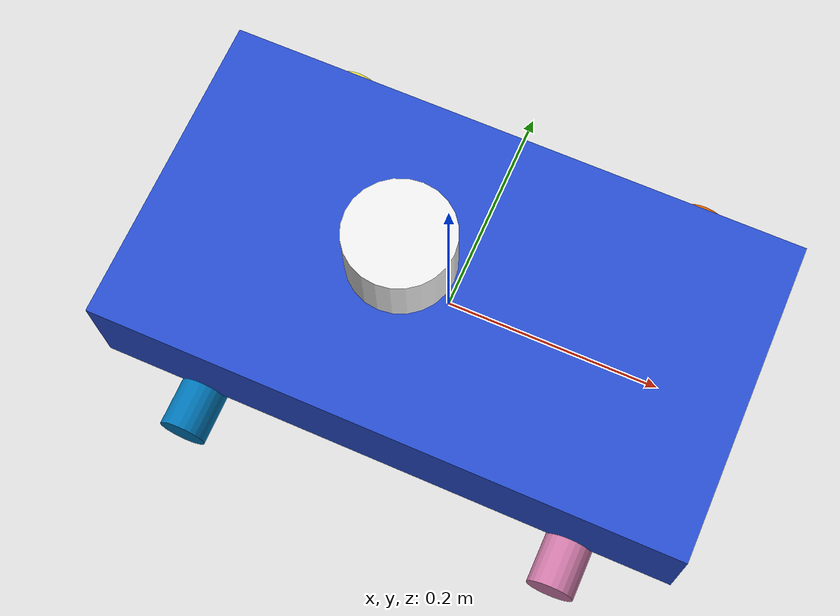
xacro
<?xml version="1.0" ?>
<robot name="myrobot" xmlns:xacro="http://www.ros.org/wiki/xacro">
    <xacro:include filename="$(find kiet_robot_description)/urdf/materials.xacro" />
    <xacro:include filename="$(find kiet_robot_description)/urdf/kiet_robot.gazebo" />
    <xacro:include filename="$(find kiet_robot_description)/urdf/macros.xacro" />

    <link name="base_footprint"/>

    <joint name="base_joint" type="fixed">
      <parent link="base_footprint"/>
      <child link="base_link"/>
      <origin xyz="0.0 0.0 0.010" rpy="0 0 0"/>
    </joint>

    <link name="base_link">
        <!-- pose and inertial -->
        <pose>0 0 0.1 0 0 0</pose>
        <inertial>
            <mass value="10"/>
            <origin rpy="0 0 0" xyz="0 0 0.1"/>
            <inertia ixx="0.0395416666667" ixy="0" ixz="0" iyy="0.106208333333" iyz="0" izz="0.106208333333"/>
        </inertial>
        <!-- body -->
        <collision name="collision_base_link">
            <geometry>
                <box size="0.55 0.3 0.11"/>
            </geometry>
        </collision>
        <visual>
            <origin rpy="0 0 0" xyz="0 0 0"/>
            <geometry>
                <box size="0.55 0.3 0.1"/>
            </geometry>
            <material name="blue"/>
        </visual>
    </link>

    <joint name="scan_joint" type="fixed">
        <origin xyz="-0.045 0 0.08" rpy="0 0 0"/>
        <parent link="base_link"/>
        <child link="base_scan"/>
    </joint>

    <link name="base_scan">
        <inertial>
            <origin xyz="0 0 0" rpy="0 0 0" />
            <mass value="1" />
            <xacro:cylinder_inertia mass="1" r="0.05" l="0.1" />
        </inertial>

        <visual>
            <origin xyz="0 0 0" rpy="0 0 0" />
            <geometry>
                <cylinder radius="0.05" length="0.06"/>
            </geometry>
            <material name="white" />
        </visual>

        <collision>
            <origin xyz="0 0 0" rpy="0 0 0"/>
            <geometry>
                <cylinder radius="0.05" length="0.06"/>
            </geometry>
        </collision>
    </link>

    <xacro:link_wheel name="wheel_fright_link" />
    <xacro:joint_wheel name="wheel_fright_joint" child="wheel_fright_link" origin_xyz="-0.18 0.17 -0.06" />

    <xacro:link_wheel name="wheel_fleft_link" />
    <xacro:joint_wheel name="wheel_fleft_joint" child="wheel_fleft_link" origin_xyz="-0.18 -0.17 -0.06" />

    <xacro:link_wheel name="wheel_bright_link" />
    <xacro:joint_wheel name="wheel_bright_joint" child="wheel_bright_link" origin_xyz="0.18 0.17 -0.06" />

    <xacro:link_wheel name="wheel_bleft_link" />
    <xacro:joint_wheel name="wheel_bleft_joint" child="wheel_bleft_link" origin_xyz="0.18 -0.17 -0.06" />

</robot>

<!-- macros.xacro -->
<robot xmlns:xacro="http://www.ros.org/wiki/xacro">
    <xacro:macro name="link_wheel" params="name">
        <link name="${name}">
            <inertial>
              <mass value="0.2"/>
              <origin rpy="0 1.5707 1.5707" xyz="0 0 0"/>
              <inertia ixx="0.000526666666667" ixy="0" ixz="0" iyy="0.000526666666667" iyz="0" izz="0.001"/>
            </inertial>
            <collision name="${name}_wheel_collision">
              <origin rpy="0 1.5707 1.5707" xyz="0 0 0"/>
              <geometry>
                <cylinder length="0.05" radius="0.022"/>
              </geometry>
            </collision>
            <visual name="${name}_visual">
              <origin rpy="0 1.5707 1.5707" xyz="0 0 0"/>
              <geometry>
                <cylinder length="0.05" radius="0.022"/>
              </geometry>
            </visual>
        </link>
    </xacro:macro>
    <xacro:macro name="joint_wheel" params="name child origin_xyz">
        <joint name="${name}" type="continuous">
            <origin rpy="0 0 0" xyz="${origin_xyz}"/>
            <child link="${child}"/>
            <parent link="base_link"/>
            <axis rpy="0 0 0" xyz="0 1 0"/>
            <limit effort="10000" velocity="1000"/>
            <joint_properties damping="1.0" friction="1.0"/>
        </joint>
    </xacro:macro>
    <xacro:macro name="cylinder_inertia" params="mass r l">
      <inertia  ixx="${mass*(3*r*r+l*l)/12}" ixy = "0" ixz = "0"
            iyy="${mass*(3*r*r+l*l)/12}" iyz = "0"
            izz="${mass*(r*r)/2}" />
    </xacro:macro>
</robot>
